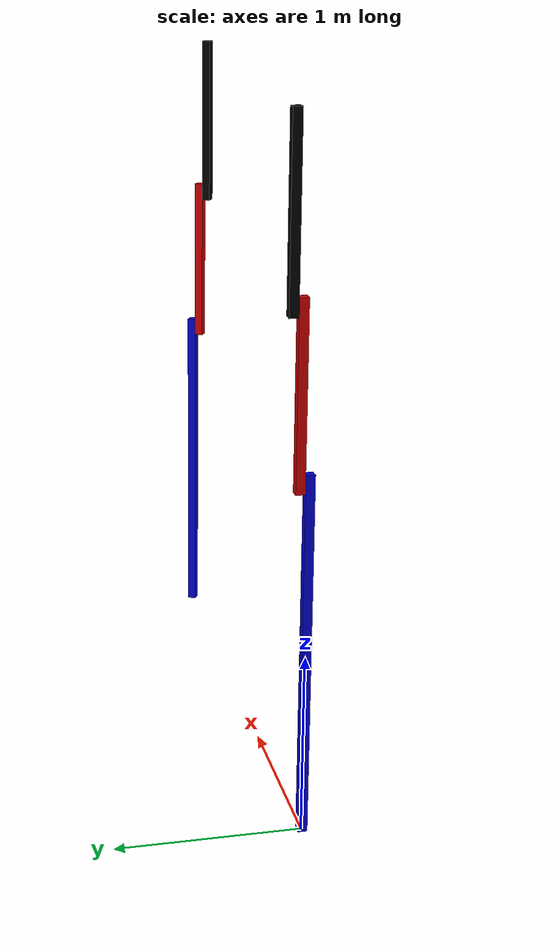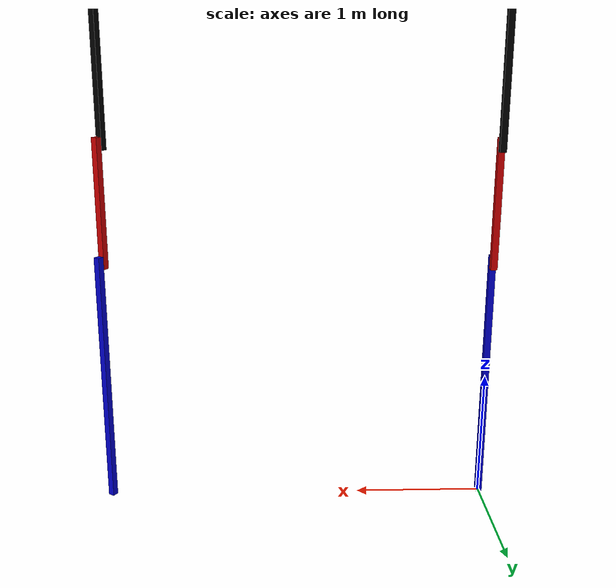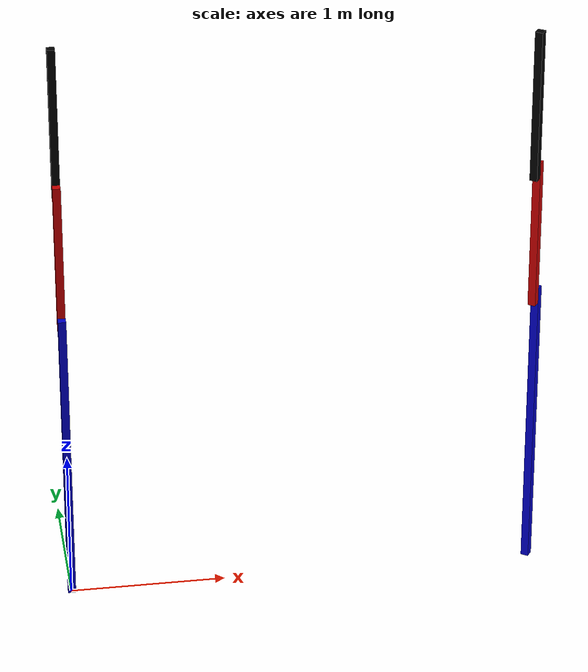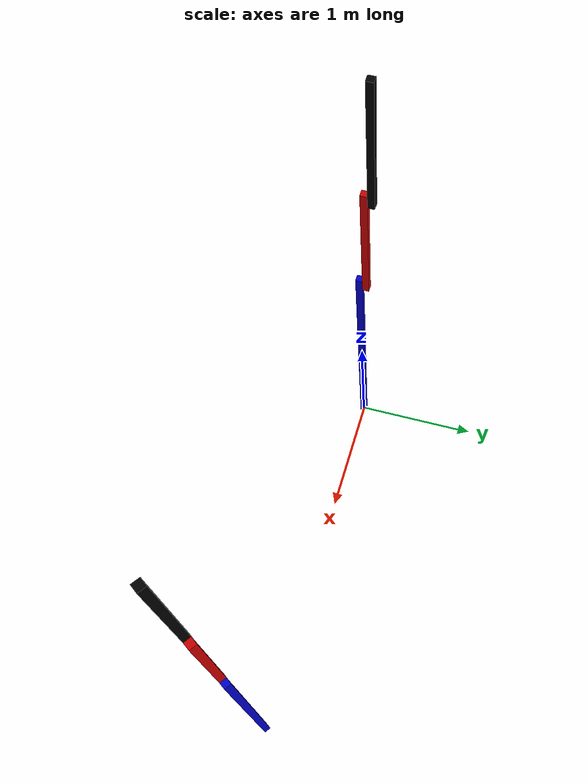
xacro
<?xml version="1.0" encoding="UTF-8"?>
<robot xmlns:xacro="http://wiki.ros.org/xacro" name="rrbot">

  <!-- copy and paste the contents of "rrbot_macro.xacro" here -->
  <xacro:include filename="materials.xacro" />
  <xacro:include filename="rrbot_macro.xacro"/>

  <!-- create link fixed to the "world" -->
  <link name="world" />

  <!-- create the first robot -->
  <xacro:rrbot prefix="rrbot1_" parent="world">
    <!-- position robot in the world -->
    <origin xyz="0 0 0" rpy="0 0 0" />
  </xacro:rrbot>

  <!-- create the second robot -->
  <xacro:rrbot prefix="rrbot2_" parent="world">
    <!-- position robot in the world -->
    <origin xyz="3 0 0" rpy="0 0 ${degrees(180)}" />
  </xacro:rrbot>

</robot>

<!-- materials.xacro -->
<robot>
    <material name="black">
        <color rgba="0.0 0.0 0.0 1.0" />
    </material>

    <material name="blue">
        <color rgba="0.0 0.0 0.8 1.0" />
    </material>

    <material name="green">
        <color rgba="0.0 1.0 0.0 1.0" />
    </material>

    <material name="dark_grey">
        <color rgba="0.2 0.2 0.2 1.0" />
    </material>

    <material name="grey">
        <color rgba="0.5 0.5 0.5 1.0" />
    </material>

    <material name="light_grey">
        <color rgba="0.8 0.8 0.8 1.0" />
    </material>

    <material name="brown">
        <color rgba="0.54 0.27 0.07 1.0"/>
      </material>

    <material name="red">
        <color rgba="0.8 0.0 0.0 1.0" />
    </material>

    <material name="white">
        <color rgba="1.0 1.0 1.0 1.0" />
    </material>

</robot>

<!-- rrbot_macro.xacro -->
<robot xmlns:xacro="http://www.ros.org/wiki/xacro">

  <xacro:macro name="rrbot" params="prefix parent *origin">

    <!-- Constants for robot dimensions -->
    <xacro:property name="width" value="0.05" /> <!-- Square dimensions (widthxwidth) of beams -->
    <xacro:property name="height0" value="2" /> <!-- base_link -->
    <xacro:property name="height1" value="1" /> <!-- link1 -->
    <xacro:property name="height2" value="1" /> <!-- link2 -->
    <xacro:property name="axel_offset" value="0.05" /> <!-- Space between top of beam and each joint -->

    <joint name="${prefix}base_joint" type="fixed">
      <xacro:insert_block name="origin" />
      <parent link="${parent}" />
      <child link="${prefix}base_link" />
    </joint>

    <!-- Base Link -->
    <link name="${prefix}base_link">
      <visual>
        <origin xyz="0 0 ${height0/2}" rpy="0 0 0" />
        <geometry>
          <box size="${width} ${width} ${height0}" />
        </geometry>
        <material name="blue" />
      </visual>
    </link>

    <joint name="${prefix}joint1" type="continuous">
      <parent link="${prefix}base_link" />
      <child link="${prefix}link1" />
      <origin xyz="0 ${width} ${height0 - axel_offset}" rpy="0 0 0" />
      <axis xyz="0 1 0" />
    </joint>

    <!-- Middle Link -->
    <link name="${prefix}link1">
      <visual>
        <origin xyz="0 0 ${height1/2 - axel_offset}" rpy="0 0 0" />
        <geometry>
          <box size="${width} ${width} ${height1}" />
        </geometry>
        <material name="red" />
      </visual>
    </link>

    <joint name="${prefix}joint2" type="continuous">
      <parent link="${prefix}link1" />
      <child link="${prefix}link2" />
      <origin xyz="0 ${width} ${height1 - axel_offset*2}" rpy="0 0 0" />
      <axis xyz="0 1 0" />
    </joint>

    <!-- Top Link -->
    <link name="${prefix}link2">
      <visual>
        <origin xyz="0 0 ${height2/2 - axel_offset}" rpy="0 0 0" />
        <geometry>
          <box size="${width} ${width} ${height2}" />
        </geometry>
        <material name="black" />
      </visual>
    </link>

    <joint name="${prefix}tool_joint" type="fixed">
      <origin xyz="0 0 ${height2-axel_offset}" rpy="0 0 0" />
      <parent link="${prefix}link2" />
      <child link="${prefix}tool0" />
    </joint>

    <!-- Tool Link -->
    <link name="${prefix}tool0"/>

  </xacro:macro>

</robot>
